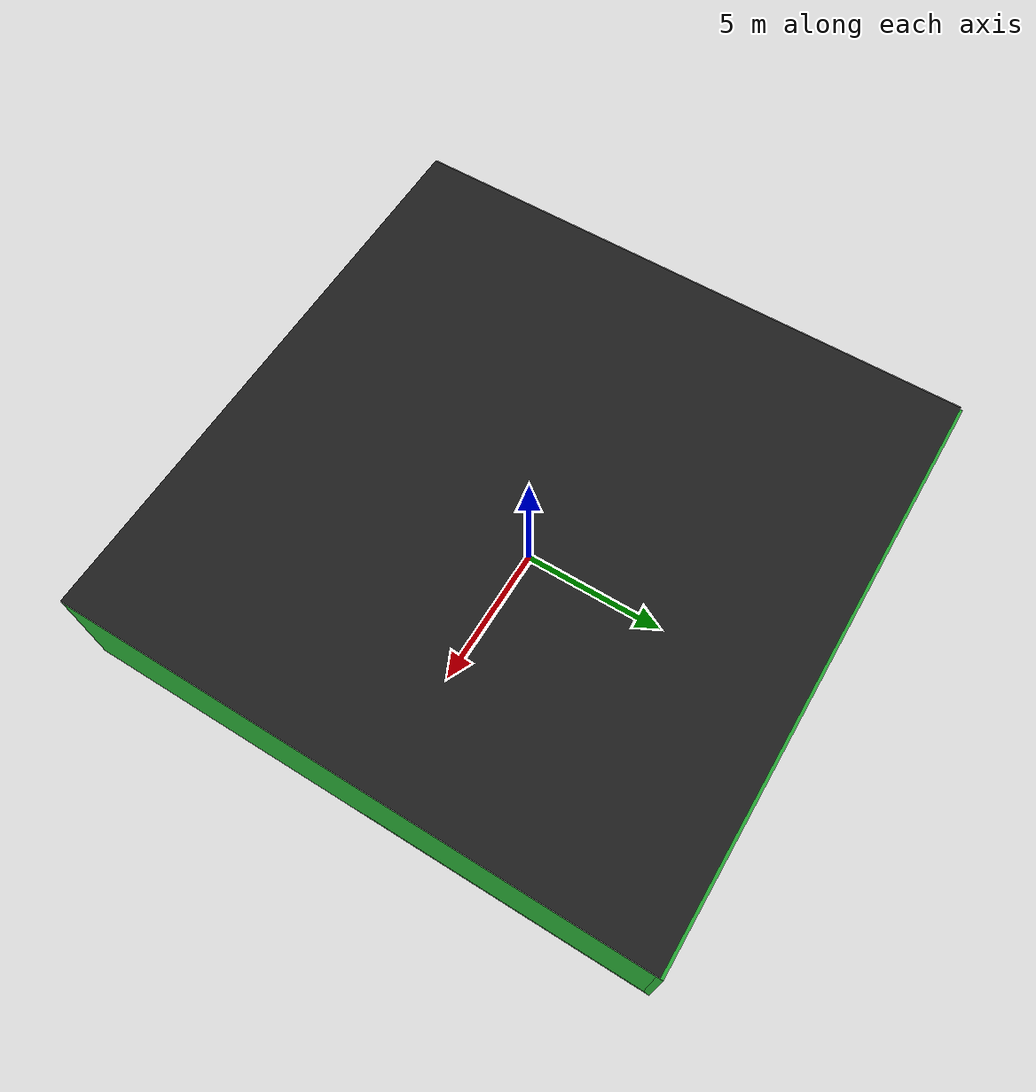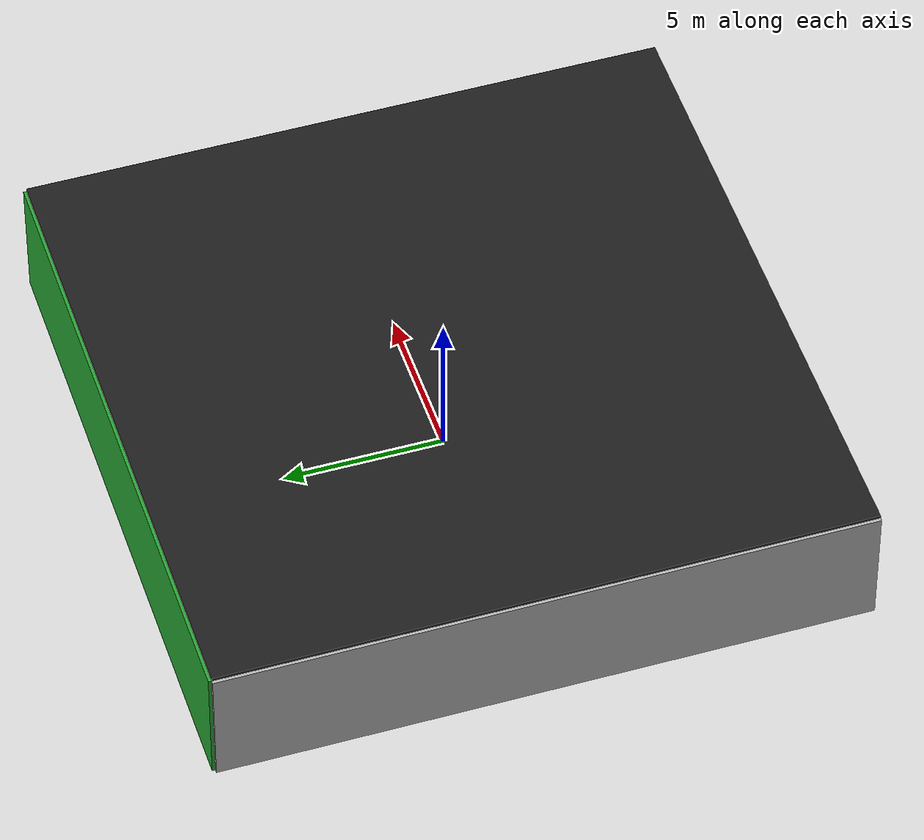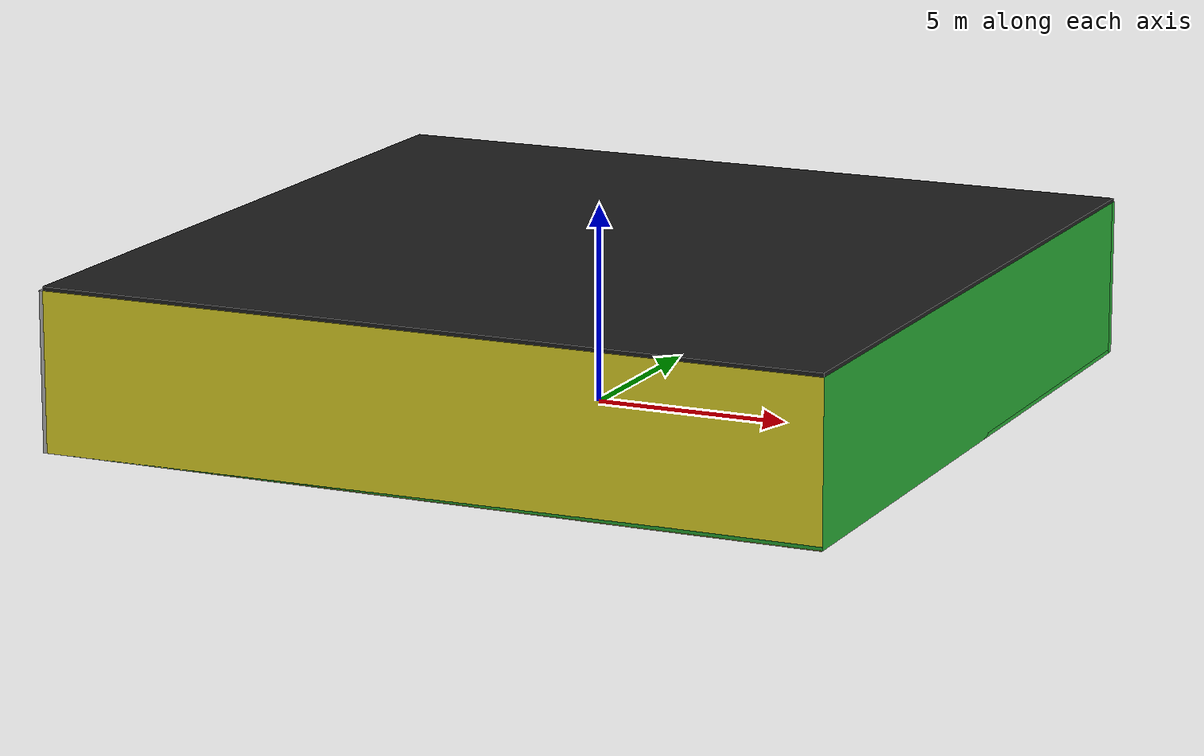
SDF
<sdf version="1.4">
 <world name="default">
  <physics type="ode">
   <max_step_size>0.001</max_step_size>
   <real_time_factor>1</real_time_factor>
   <real_time_update_rate>1000</real_time_update_rate>
   <gravity>0 0 -9.8</gravity>
  </physics>
  <scene><ambient>0.4 0.4 0.4 1</ambient><background>0.7 0.7 0.7 1</background><shadows>1</shadows></scene>
  <model name="Surrounding">
   <static>1</static>
   <link name="Ceiling">
    <collision name="Ceiling_Collision"><geometry><box><size>20 20 0.1</size></box></geometry></collision>
    <visual name="Ceiling_Visual">
     <geometry><box><size>20 20 0.1</size></box></geometry>
     <material>
      <script><uri>file://media/materials/scripts/gazebo.material</uri><name>Gazebo/Black</name></script>
     </material>
    </visual>
    <pose>0 0 4.05 0 0 0</pose>
   </link>
   <link name="Wall_South">
    <collision name="Wall_South_Collision">
     <geometry><box><size>20 0 4</size></box></geometry>
     <pose>0 0 2 0 -0 0</pose>
    </collision>
    <visual name="Wall_South_Visual">
     <pose>0 0 2 0 -0 0</pose>
     <geometry><box><size>20 0 4</size></box></geometry>
     <material>
      <script><uri>file://media/materials/scripts/gazebo.material</uri><name>Gazebo/YellowGlow</name></script>
     </material>
    </visual>
    <velocity_decay><linear>0</linear><angular>0</angular></velocity_decay>
    <pose>0 -10 0 0 -0 0</pose>
   </link>
   <link name="Wall_East">
    <collision name="Wall_21_Collision">
     <geometry><box><size>20 0 4</size></box></geometry>
     <pose>0 0 2 0 -0 0</pose>
    </collision>
    <visual name="Wall_21_Visual">
     <pose>0 0 2 0 -0 0</pose>
     <geometry><box><size>20 0 4</size></box></geometry>
     <material>
      <script><uri>file://media/materials/scripts/gazebo.material</uri><name>Gazebo/GreenGlow</name></script>
     </material>
    </visual>
    <velocity_decay><linear>0</linear><angular>0</angular></velocity_decay>
    <pose>10 0 0 0 -0 1.5708</pose>
   </link>
   <link name="Wall_North">
    <collision name="Wall_22_Collision">
     <geometry><box><size>20 0.2 4</size></box></geometry>
     <pose>0 0 2 0 -0 0</pose>
    </collision>
    <visual name="Wall_22_Visual">
     <pose>0 0 2 0 -0 0</pose>
     <geometry><box><size>20 0.2 4</size></box></geometry>
     <material>
      <script><uri>file://media/materials/scripts/gazebo.material</uri><name>Gazebo/GreenGlow</name></script>
     </material>
    </visual>
    <velocity_decay><linear>0</linear><angular>0</angular></velocity_decay>
    <pose>0 10 0 0 -0 0</pose>
   </link>
   <link name="Wall_West">
    <collision name="Wall_23_Collision">
     <geometry><box><size>20 0.2 4</size></box></geometry>
     <pose>0 0 2 0 -0 0</pose>
    </collision>
    <visual name="Wall_23_Visual">
     <pose>0 0 2 0 -0 0</pose>
     <geometry><box><size>20 0.2 4</size></box></geometry>
     <material>
      <script><uri>file://media/materials/scripts/gazebo.material</uri><name>Gazebo/CloudySky</name></script>
     </material>
    </visual>
    <velocity_decay><linear>0</linear><angular>0</angular></velocity_decay>
    <pose>-10 0 0 0 0 -1.5708</pose>
   </link>
   <link name="Ground_link">
    <collision name="collision">
     <pose>0 0 .05 0 -0 0</pose>
     <geometry><box><size>20 20 0.1</size></box></geometry>
    </collision>
    <visual name="visual">
     <pose>0 0 .05 0 -0 0</pose>
     <geometry><box><size>20 20 0.1</size></box></geometry>
     <material>
      <script><uri>file://media/materials/scripts/gazebo.material</uri><name>Gazebo/Green</name></script>
     </material>
    </visual>
   </link>
   <static>1</static>
  </model>
  <spherical_coordinates>
   <surface_model>EARTH_WGS84</surface_model>
   <latitude_deg>0</latitude_deg>
   <longitude_deg>0</longitude_deg>
   <elevation>0</elevation>
   <heading_deg>0</heading_deg>
  </spherical_coordinates>
  <light name="lightball_0" type="diffuse">
   <diffuse>0.8 0.8 0.8 1</diffuse>
   <specular>0.2 0.2 0.2 1</specular>
   <attenuation>
    <range>100</range>
    <constant>0.7</constant>
    <linear>0.01</linear>
    <quadratic>0.001</quadratic>
   </attenuation>
   <direction>-0.5 0.1 -0.9</direction>
   <pose>-2.27137569725 -6.95819976756 2.13610433881 0 0 0</pose>
  </light>
  <light name="lightball_1" type="diffuse">
   <diffuse>0.8 0.8 0.8 1</diffuse>
   <specular>0.2 0.2 0.2 1</specular>
   <attenuation>
    <range>100</range>
    <constant>0.7</constant>
    <linear>0.01</linear>
    <quadratic>0.001</quadratic>
   </attenuation>
   <direction>-0.5 0.1 -0.9</direction>
   <pose>7.23129475633 6.31413982864 2.50680150081 0 0 0</pose>
  </light>
  <light name="lightball_2" type="diffuse">
   <diffuse>0.8 0.8 0.8 1</diffuse>
   <specular>0.2 0.2 0.2 1</specular>
   <attenuation>
    <range>100</range>
    <constant>0.7</constant>
    <linear>0.01</linear>
    <quadratic>0.001</quadratic>
   </attenuation>
   <direction>-0.5 0.1 -0.9</direction>
   <pose>-9.48841789377 5.74908177352 3.19981451074 0 0 0</pose>
  </light>
  <light name="lightball_3" type="diffuse">
   <diffuse>0.8 0.8 0.8 1</diffuse>
   <specular>0.2 0.2 0.2 1</specular>
   <attenuation>
    <range>100</range>
    <constant>0.7</constant>
    <linear>0.01</linear>
    <quadratic>0.001</quadratic>
   </attenuation>
   <direction>-0.5 0.1 -0.9</direction>
   <pose>-4.8877683789 8.4467748754 0.950826109327 0 0 0</pose>
  </light>
  <light name="lightball_4" type="diffuse">
   <diffuse>0.8 0.8 0.8 1</diffuse>
   <specular>0.2 0.2 0.2 1</specular>
   <attenuation>
    <range>100</range>
    <constant>0.7</constant>
    <linear>0.01</linear>
    <quadratic>0.001</quadratic>
   </attenuation>
   <direction>-0.5 0.1 -0.9</direction>
   <pose>-4.74231783979 -3.00623227928 1.09883157503 0 0 0</pose>
  </light>
  <light name="lightball_5" type="diffuse">
   <diffuse>0.8 0.8 0.8 1</diffuse>
   <specular>0.2 0.2 0.2 1</specular>
   <attenuation>
    <range>100</range>
    <constant>0.7</constant>
    <linear>0.01</linear>
    <quadratic>0.001</quadratic>
   </attenuation>
   <direction>-0.5 0.1 -0.9</direction>
   <pose>-8.38004235898 0.0486089068777 3.05988183424 0 0 0</pose>
  </light>
  <light name="lightball_6" type="diffuse">
   <diffuse>0.8 0.8 0.8 1</diffuse>
   <specular>0.2 0.2 0.2 1</specular>
   <attenuation>
    <range>100</range>
    <constant>0.7</constant>
    <linear>0.01</linear>
    <quadratic>0.001</quadratic>
   </attenuation>
   <direction>-0.5 0.1 -0.9</direction>
   <pose>0.309180126244 5.1276433696 2.086715035 0 0 0</pose>
  </light>
  <light name="lightball_7" type="diffuse">
   <diffuse>0.8 0.8 0.8 1</diffuse>
   <specular>0.2 0.2 0.2 1</specular>
   <attenuation>
    <range>100</range>
    <constant>0.7</constant>
    <linear>0.01</linear>
    <quadratic>0.001</quadratic>
   </attenuation>
   <direction>-0.5 0.1 -0.9</direction>
   <pose>-4.45581858642 -3.24147154713 3.56820490376 0 0 0</pose>
  </light>
  <light name="lightball_8" type="diffuse">
   <diffuse>0.8 0.8 0.8 1</diffuse>
   <specular>0.2 0.2 0.2 1</specular>
   <attenuation>
    <range>100</range>
    <constant>0.7</constant>
    <linear>0.01</linear>
    <quadratic>0.001</quadratic>
   </attenuation>
   <direction>-0.5 0.1 -0.9</direction>
   <pose>-0.824613242208 8.1344479354 1.49188113338 0 0 0</pose>
  </light>
  <light name="lightball_9" type="diffuse">
   <diffuse>0.8 0.8 0.8 1</diffuse>
   <specular>0.2 0.2 0.2 1</specular>
   <attenuation>
    <range>100</range>
    <constant>0.7</constant>
    <linear>0.01</linear>
    <quadratic>0.001</quadratic>
   </attenuation>
   <direction>-0.5 0.1 -0.9</direction>
   <pose>9.47342729339 2.26744831718 1.15575010947 0 0 0</pose>
  </light>
  <light name="lightball_10" type="diffuse">
   <diffuse>0.8 0.8 0.8 1</diffuse>
   <specular>0.2 0.2 0.2 1</specular>
   <attenuation>
    <range>100</range>
    <constant>0.7</constant>
    <linear>0.01</linear>
    <quadratic>0.001</quadratic>
   </attenuation>
   <direction>-0.5 0.1 -0.9</direction>
   <pose>6.54631545732 8.6944272343 1.40308276159 0 0 0</pose>
  </light>
  <light name="lightball_11" type="diffuse">
   <diffuse>0.8 0.8 0.8 1</diffuse>
   <specular>0.2 0.2 0.2 1</specular>
   <attenuation>
    <range>100</range>
    <constant>0.7</constant>
    <linear>0.01</linear>
    <quadratic>0.001</quadratic>
   </attenuation>
   <direction>-0.5 0.1 -0.9</direction>
   <pose>6.65633587743 -4.61130605909 2.91479683352 0 0 0</pose>
  </light>
  <light name="lightball_12" type="diffuse">
   <diffuse>0.8 0.8 0.8 1</diffuse>
   <specular>0.2 0.2 0.2 1</specular>
   <attenuation>
    <range>100</range>
    <constant>0.7</constant>
    <linear>0.01</linear>
    <quadratic>0.001</quadratic>
   </attenuation>
   <direction>-0.5 0.1 -0.9</direction>
   <pose>-7.12788048092 -6.91142629277 3.29762257837 0 0 0</pose>
  </light>
  <light name="lightball_13" type="diffuse">
   <diffuse>0.8 0.8 0.8 1</diffuse>
   <specular>0.2 0.2 0.2 1</specular>
   <attenuation>
    <range>100</range>
    <constant>0.7</constant>
    <linear>0.01</linear>
    <quadratic>0.001</quadratic>
   </attenuation>
   <direction>-0.5 0.1 -0.9</direction>
   <pose>8.9237375115 8.08862716856 2.65791765772 0 0 0</pose>
  </light>
  <include>
   <uri>model://textured_shapes</uri>
   <pose>-4.49262321303 -4.20990727594 0 0 0 2.28015744047</pose>
  </include>
  <include>
   <uri>model://textured_shapes</uri>
   <pose>1.02341224026 5.09314649677 0 0 0 2.84351867828</pose>
  </include>
  <include><uri>model://cabinet</uri><pose>4.21755535746 -1.14522702526 0 0 0 1.17424372248</pose></include>
 </world>
</sdf>

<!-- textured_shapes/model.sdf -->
<sdf version="1.6">
  <model name="textured_shapes">
    <pose>0 0 0.5 0 0 0</pose>
    <link name="box">
      <pose>0 -1.5 0 0 0 0</pose>
      <collision name="collision">
        <geometry>
          <box>
            <size>1 1 1</size>
          </box>
        </geometry>
      </collision>
      <visual name="visual">
        <geometry>
          <box>
            <size>1 1 1</size>
          </box>
        </geometry>
        <material>
          <script>
            <uri>model://../model_source/models/textured_shapes/materials/scripts</uri>
            <uri>model://../model_source/models/textured_shapes/materials/textures</uri>
            <name>TexturedShape/Squares</name>
          </script>
        </material>
      </visual>
    </link>
    <link name="sphere">
      <collision name="collision">
        <geometry>
          <sphere>
            <radius>0.5</radius>
          </sphere>
        </geometry>
      </collision>
      <visual name="visual">
        <geometry>
          <sphere>
            <radius>0.5</radius>
          </sphere>
        </geometry>
        <material>
          <script>
            <uri>model://../model_source/models/textured_shapes/materials/scripts</uri>
            <uri>model://../model_source/models/textured_shapes/materials/textures</uri>
            <name>TexturedShape/Squares</name>
          </script>
        </material>
      </visual>
    </link>
    <link name="cylinder">
      <pose>0 1.5 0 0 0 0</pose>
      <collision name="collision">
        <geometry>
          <cylinder>
            <radius>0.5</radius>
            <length>1</length>
          </cylinder>
        </geometry>
      </collision>
      <visual name="visual">
        <geometry>
          <cylinder>
            <radius>0.5</radius>
            <length>1</length>
          </cylinder>
        </geometry>
        <material>
          <script>
            <uri>model://../model_source/models/textured_shapes/materials/scripts</uri>
            <uri>model://../model_source/models/textured_shapes/materials/textures</uri>
            <name>TexturedShape/Squares</name>
          </script>
        </material>
      </visual>
    </link>
  </model>
</sdf>

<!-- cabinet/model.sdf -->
<sdf version="1.5">
  <model name="cabinet">
    <static>true</static>
    <link name="cabinet_bottom_plate">
      <inertial>
        <pose>0 0 -1 0 0 0</pose>
        <inertia>
          <ixx>2.050000</ixx>
          <ixy>0</ixy>
          <ixz>0</ixz>
          <iyy>2.050000</iyy>
          <iyz>0</iyz>
          <izz>2.050000</izz>
        </inertia>
        <mass>25.000000</mass>
      </inertial>
      <collision name="cabinet_bottom_plate_geom">
        <pose>0 0 0.010000 0 0 0</pose>
        <geometry>
          <box>
            <size>0.450000 0.450000 0.020000</size>
          </box>
        </geometry>
      </collision>
      <visual name="cabinet_bottom_plate_geom_visual">
        <pose>0 0 0.010000 0 0 0</pose>
        <geometry>
          <box>
            <size>0.450000 0.450000 0.020000</size>
          </box>
        </geometry>
        <material>
          <script>
            <uri>model://media/materials/scripts/gazebo.material</uri>
            <name>Gazebo/Wood</name>
          </script>
        </material>
      </visual>
      <collision name="cabinet_bottom_plate_geom_cabinet_back_plate">
        <pose>0.235000 0 0.510000 0 0 0</pose>
        <geometry>
          <box>
            <size>0.020000 0.450000 1.020000</size>
          </box>
        </geometry>
      </collision>
      <visual name="cabinet_bottom_plate_geom_cabinet_back_plate_visual">
        <pose>0.235000 0 0.510000 0 0 0</pose>
        <geometry>
          <box>
            <size>0.020000 0.450000 1.020000</size>
          </box>
        </geometry>
        <material>
          <script>
            <uri>model://media/materials/scripts/gazebo.material</uri>
            <name>Gazebo/Wood</name>
          </script>
        </material>
      </visual>
      <collision name="cabinet_bottom_plate_geom_cabinet_left_plate">
        <pose>0 0.235000 0.510000 0 0 0</pose>
        <geometry>
          <box>
            <size>0.450000 0.020000 1.020000</size>
          </box>
        </geometry>
      </collision>
      <visual name="cabinet_bottom_plate_geom_cabinet_left_plate_visual">
        <pose>0 0.235000 0.510000 0 0 0</pose>
        <geometry>
          <box>
            <size>0.450000 0.020000 1.020000</size>
          </box>
        </geometry>
        <material>
          <script>
            <uri>model://media/materials/scripts/gazebo.material</uri>
            <name>Gazebo/Wood</name>
          </script>
        </material>
      </visual>
      <collision name="cabinet_bottom_plate_geom_cabinet_middle_plate">
        <pose>0 0 0.510000 0 0 0</pose>
        <geometry>
          <box>
            <size>0.450000 0.450000 0.020000</size>
          </box>
        </geometry>
      </collision>
      <visual name="cabinet_bottom_plate_geom_cabinet_middle_plate_visual">
        <pose>0 0 0.510000 0 0 0</pose>
        <geometry>
          <box>
            <size>0.450000 0.450000 0.020000</size>
          </box>
        </geometry>
        <material>
          <script>
            <uri>model://media/materials/scripts/gazebo.material</uri>
            <name>Gazebo/Wood</name>
          </script>
        </material>
      </visual>
      <collision name="cabinet_bottom_plate_geom_cabinet_right_plate">
        <pose>0 -0.235000 0.510000 0 0 0</pose>
        <geometry>
          <box>
            <size>0.450000 0.020000 1.020000</size>
          </box>
        </geometry>
      </collision>
      <visual name="cabinet_bottom_plate_geom_cabinet_right_plate_visual">
        <pose>0 -0.235000 0.510000 0 0 0</pose>
        <geometry>
          <box>
            <size>0.450000 0.020000 1.020000</size>
          </box>
        </geometry>
        <material>
          <script>
            <uri>model://media/materials/scripts/gazebo.material</uri>
            <name>Gazebo/Wood</name>
          </script>
        </material>
      </visual>
      <collision name="cabinet_bottom_plate_geom_cabinet_top_plate">
        <pose>0 0 1.010000 0 0 0</pose>
        <geometry>
          <box>
            <size>0.450000 0.450000 0.020000</size>
          </box>
        </geometry>
      </collision>
      <visual name="cabinet_bottom_plate_geom_cabinet_top_plate_visual">
        <pose>0 0 1.010000 0 0 0</pose>
        <geometry>
          <box>
            <size>0.450000 0.450000 0.020000</size>
          </box>
        </geometry>
        <material>
          <script>
            <uri>model://media/materials/scripts/gazebo.material</uri>
            <name>Gazebo/Wood</name>
          </script>
        </material>
      </visual>
    </link>
  </model>
</sdf>
